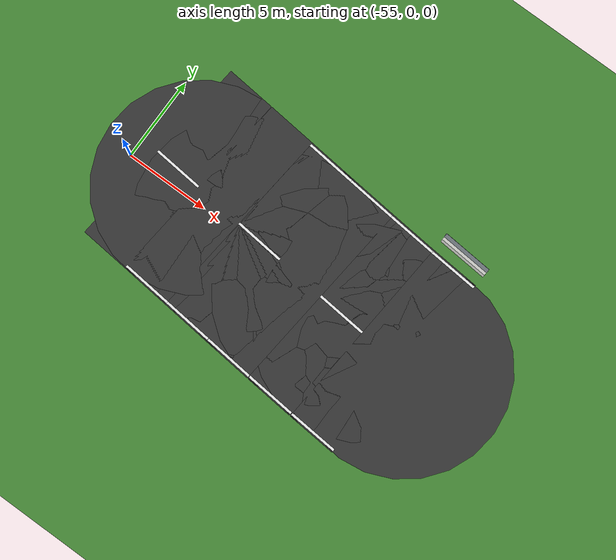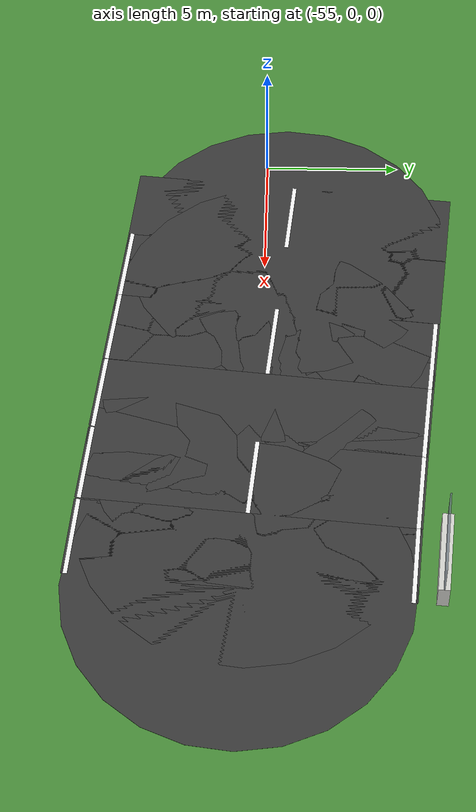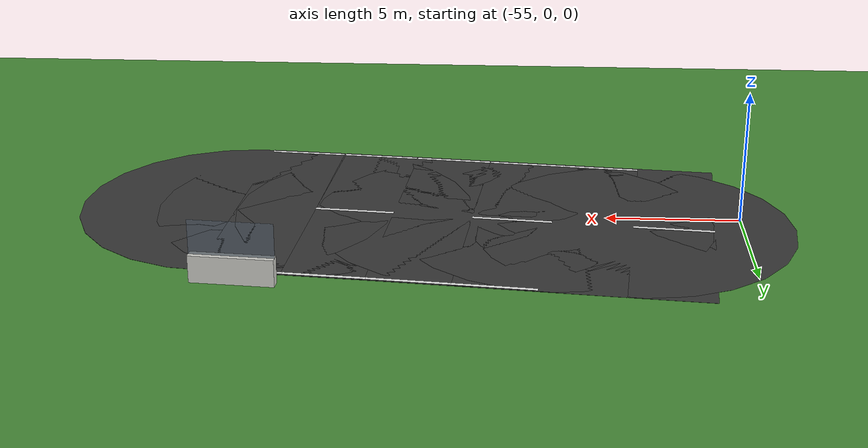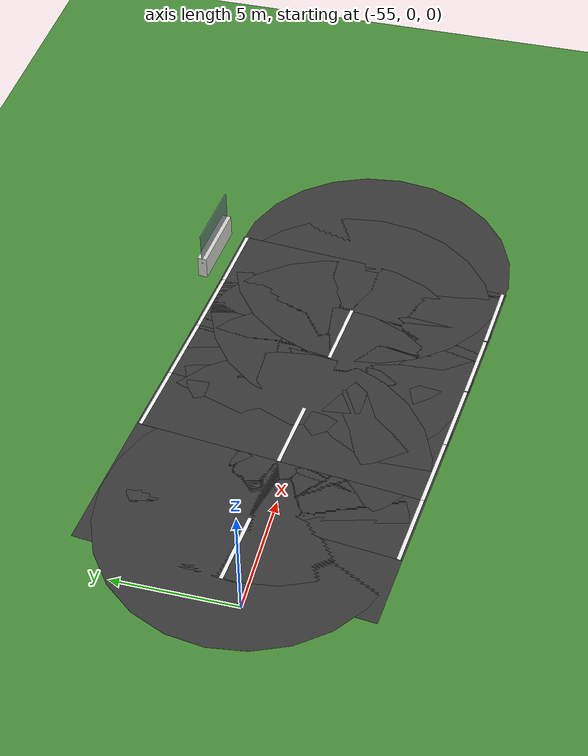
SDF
<sdf version="1.6">
 <world name="sem_silesia_ring_2026">
  <model name="ground_plane">
   <static>true</static>
   <link name="link">
    <collision name="collision">
     <geometry><plane><normal>0 0 1</normal><size>1200 1200</size></plane></geometry>
     <surface><friction><ode><mu>0.6</mu><mu2>0.6</mu2></ode></friction></surface>
    </collision>
    <visual name="visual">
     <geometry><plane><normal>0 0 1</normal><size>1200 1200</size></plane></geometry>
     <material><ambient>0.28 0.55 0.22 1</ambient><diffuse>0.28 0.55 0.22 1</diffuse></material>
    </visual>
   </link>
  </model>
  <model name="road_s422">
   <static>true</static>
   <pose>-52.4547 0.9344 0.0030 0 0 -0.0946</pose>
   <link name="link">
    <visual name="v">
     <geometry><box><size>3.0025 12.0000 0.0060</size></box></geometry>
     <material><ambient>0.22 0.22 0.22 1</ambient><diffuse>0.22 0.22 0.22 1</diffuse></material>
    </visual>
    <collision name="c">
     <geometry><box><size>3.0025 12.0000 0.0060</size></box></geometry>
     <surface><friction><ode><mu>0.9</mu><mu2>0.9</mu2></ode></friction></surface>
    </collision>
   </link>
  </model>
  <model name="cd_s422">
   <static>true</static>
   <pose>-52.4547 0.9344 0.0070 0 0 -0.0946</pose>
   <link name="link">
    <visual name="v">
     <geometry><box><size>3.0025 0.1500 0.0080</size></box></geometry>
     <material><ambient>0.95 0.95 0.95 1</ambient><diffuse>0.95 0.95 0.95 1</diffuse></material>
    </visual>
   </link>
  </model>
  <model name="road_s423">
   <static>true</static>
   <pose>-49.4663 0.6439 0.0030 0 0 -0.0992</pose>
   <link name="link">
    <visual name="v">
     <geometry><box><size>3.0025 12.0000 0.0060</size></box></geometry>
     <material><ambient>0.22 0.22 0.22 1</ambient><diffuse>0.22 0.22 0.22 1</diffuse></material>
    </visual>
    <collision name="c">
     <geometry><box><size>3.0025 12.0000 0.0060</size></box></geometry>
     <surface><friction><ode><mu>0.9</mu><mu2>0.9</mu2></ode></friction></surface>
    </collision>
   </link>
  </model>
  <model name="road_jnt423">
   <static>true</static>
   <pose>-50.9602 0.7926 0.0030 0 0 0</pose>
   <link name="link">
    <visual name="v">
     <geometry><cylinder><radius>6.0000</radius><length>0.0060</length></cylinder></geometry>
     <material><ambient>0.22 0.22 0.22 1</ambient><diffuse>0.22 0.22 0.22 1</diffuse></material>
    </visual>
    <collision name="c">
     <geometry><cylinder><radius>6.0000</radius><length>0.0060</length></cylinder></geometry>
     <surface><friction><ode><mu>0.9</mu><mu2>0.9</mu2></ode></friction></surface>
    </collision>
   </link>
  </model>
  <model name="wl_R_s423">
   <static>true</static>
   <pose>-50.0458 -5.1773 0.0070 0 0 -0.0992</pose>
   <link name="link">
    <visual name="v">
     <geometry><box><size>3.0025 0.1500 0.0080</size></box></geometry>
     <material><ambient>0.95 0.95 0.95 1</ambient><diffuse>0.95 0.95 0.95 1</diffuse></material>
    </visual>
   </link>
  </model>
  <model name="road_s424">
   <static>true</static>
   <pose>-46.4787 0.3452 0.0030 0 0 -0.1001</pose>
   <link name="link">
    <visual name="v">
     <geometry><box><size>3.0025 12.0000 0.0060</size></box></geometry>
     <material><ambient>0.22 0.22 0.22 1</ambient><diffuse>0.22 0.22 0.22 1</diffuse></material>
    </visual>
    <collision name="c">
     <geometry><box><size>3.0025 12.0000 0.0060</size></box></geometry>
     <surface><friction><ode><mu>0.9</mu><mu2>0.9</mu2></ode></friction></surface>
    </collision>
   </link>
  </model>
  <model name="road_jnt424">
   <static>true</static>
   <pose>-47.9724 0.4952 0.0030 0 0 0</pose>
   <link name="link">
    <visual name="v">
     <geometry><cylinder><radius>6.0000</radius><length>0.0060</length></cylinder></geometry>
     <material><ambient>0.22 0.22 0.22 1</ambient><diffuse>0.22 0.22 0.22 1</diffuse></material>
    </visual>
    <collision name="c">
     <geometry><cylinder><radius>6.0000</radius><length>0.0060</length></cylinder></geometry>
     <surface><friction><ode><mu>0.9</mu><mu2>0.9</mu2></ode></friction></surface>
    </collision>
   </link>
  </model>
  <model name="wl_L_s424">
   <static>true</static>
   <pose>-45.8942 6.1659 0.0070 0 0 -0.1001</pose>
   <link name="link">
    <visual name="v">
     <geometry><box><size>3.0025 0.1500 0.0080</size></box></geometry>
     <material><ambient>0.95 0.95 0.95 1</ambient><diffuse>0.95 0.95 0.95 1</diffuse></material>
    </visual>
   </link>
  </model>
  <model name="wl_R_s424">
   <static>true</static>
   <pose>-47.0631 -5.4756 0.0070 0 0 -0.1001</pose>
   <link name="link">
    <visual name="v">
     <geometry><box><size>3.0025 0.1500 0.0080</size></box></geometry>
     <material><ambient>0.95 0.95 0.95 1</ambient><diffuse>0.95 0.95 0.95 1</diffuse></material>
    </visual>
   </link>
  </model>
  <model name="cd_s424">
   <static>true</static>
   <pose>-46.4787 0.3452 0.0070 0 0 -0.1001</pose>
   <link name="link">
    <visual name="v">
     <geometry><box><size>3.0025 0.1500 0.0080</size></box></geometry>
     <material><ambient>0.95 0.95 0.95 1</ambient><diffuse>0.95 0.95 0.95 1</diffuse></material>
    </visual>
   </link>
  </model>
  <model name="road_s425">
   <static>true</static>
   <pose>-43.4907 0.0496 0.0030 0 0 -0.0972</pose>
   <link name="link">
    <visual name="v">
     <geometry><box><size>3.0025 12.0000 0.0060</size></box></geometry>
     <material><ambient>0.22 0.22 0.22 1</ambient><diffuse>0.22 0.22 0.22 1</diffuse></material>
    </visual>
    <collision name="c">
     <geometry><box><size>3.0025 12.0000 0.0060</size></box></geometry>
     <surface><friction><ode><mu>0.9</mu><mu2>0.9</mu2></ode></friction></surface>
    </collision>
   </link>
  </model>
  <model name="road_jnt425">
   <static>true</static>
   <pose>-44.9849 0.1952 0.0030 0 0 0</pose>
   <link name="link">
    <visual name="v">
     <geometry><cylinder><radius>6.0000</radius><length>0.0060</length></cylinder></geometry>
     <material><ambient>0.22 0.22 0.22 1</ambient><diffuse>0.22 0.22 0.22 1</diffuse></material>
    </visual>
    <collision name="c">
     <geometry><cylinder><radius>6.0000</radius><length>0.0060</length></cylinder></geometry>
     <surface><friction><ode><mu>0.9</mu><mu2>0.9</mu2></ode></friction></surface>
    </collision>
   </link>
  </model>
  <model name="wl_L_s425">
   <static>true</static>
   <pose>-42.9232 5.8720 0.0070 0 0 -0.0972</pose>
   <link name="link">
    <visual name="v">
     <geometry><box><size>3.0025 0.1500 0.0080</size></box></geometry>
     <material><ambient>0.95 0.95 0.95 1</ambient><diffuse>0.95 0.95 0.95 1</diffuse></material>
    </visual>
   </link>
  </model>
  <model name="wl_R_s425">
   <static>true</static>
   <pose>-44.0582 -5.7728 0.0070 0 0 -0.0972</pose>
   <link name="link">
    <visual name="v">
     <geometry><box><size>3.0025 0.1500 0.0080</size></box></geometry>
     <material><ambient>0.95 0.95 0.95 1</ambient><diffuse>0.95 0.95 0.95 1</diffuse></material>
    </visual>
   </link>
  </model>
  <model name="road_s426">
   <static>true</static>
   <pose>-40.5014 -0.2317 0.0030 0 0 -0.0905</pose>
   <link name="link">
    <visual name="v">
     <geometry><box><size>3.0025 12.0000 0.0060</size></box></geometry>
     <material><ambient>0.22 0.22 0.22 1</ambient><diffuse>0.22 0.22 0.22 1</diffuse></material>
    </visual>
    <collision name="c">
     <geometry><box><size>3.0025 12.0000 0.0060</size></box></geometry>
     <surface><friction><ode><mu>0.9</mu><mu2>0.9</mu2></ode></friction></surface>
    </collision>
   </link>
  </model>
  <model name="road_jnt426">
   <static>true</static>
   <pose>-41.9965 -0.0961 0.0030 0 0 0</pose>
   <link name="link">
    <visual name="v">
     <geometry><cylinder><radius>6.0000</radius><length>0.0060</length></cylinder></geometry>
     <material><ambient>0.22 0.22 0.22 1</ambient><diffuse>0.22 0.22 0.22 1</diffuse></material>
    </visual>
    <collision name="c">
     <geometry><cylinder><radius>6.0000</radius><length>0.0060</length></cylinder></geometry>
     <surface><friction><ode><mu>0.9</mu><mu2>0.9</mu2></ode></friction></surface>
    </collision>
   </link>
  </model>
  <model name="wl_L_s426">
   <static>true</static>
   <pose>-39.9727 5.5943 0.0070 0 0 -0.0905</pose>
   <link name="link">
    <visual name="v">
     <geometry><box><size>3.0025 0.1500 0.0080</size></box></geometry>
     <material><ambient>0.95 0.95 0.95 1</ambient><diffuse>0.95 0.95 0.95 1</diffuse></material>
    </visual>
   </link>
  </model>
  <model name="wl_R_s426">
   <static>true</static>
   <pose>-41.0301 -6.0578 0.0070 0 0 -0.0905</pose>
   <link name="link">
    <visual name="v">
     <geometry><box><size>3.0025 0.1500 0.0080</size></box></geometry>
     <material><ambient>0.95 0.95 0.95 1</ambient><diffuse>0.95 0.95 0.95 1</diffuse></material>
    </visual>
   </link>
  </model>
  <model name="cd_s426">
   <static>true</static>
   <pose>-40.5014 -0.2317 0.0070 0 0 -0.0905</pose>
   <link name="link">
    <visual name="v">
     <geometry><box><size>3.0025 0.1500 0.0080</size></box></geometry>
     <material><ambient>0.95 0.95 0.95 1</ambient><diffuse>0.95 0.95 0.95 1</diffuse></material>
    </visual>
   </link>
  </model>
  <model name="road_s427">
   <static>true</static>
   <pose>-37.5098 -0.4875 0.0030 0 0 -0.0801</pose>
   <link name="link">
    <visual name="v">
     <geometry><box><size>3.0025 12.0000 0.0060</size></box></geometry>
     <material><ambient>0.22 0.22 0.22 1</ambient><diffuse>0.22 0.22 0.22 1</diffuse></material>
    </visual>
    <collision name="c">
     <geometry><box><size>3.0025 12.0000 0.0060</size></box></geometry>
     <surface><friction><ode><mu>0.9</mu><mu2>0.9</mu2></ode></friction></surface>
    </collision>
   </link>
  </model>
  <model name="road_jnt427">
   <static>true</static>
   <pose>-39.0063 -0.3674 0.0030 0 0 0</pose>
   <link name="link">
    <visual name="v">
     <geometry><cylinder><radius>6.0000</radius><length>0.0060</length></cylinder></geometry>
     <material><ambient>0.22 0.22 0.22 1</ambient><diffuse>0.22 0.22 0.22 1</diffuse></material>
    </visual>
    <collision name="c">
     <geometry><cylinder><radius>6.0000</radius><length>0.0060</length></cylinder></geometry>
     <surface><friction><ode><mu>0.9</mu><mu2>0.9</mu2></ode></friction></surface>
    </collision>
   </link>
  </model>
  <model name="wl_L_s427">
   <static>true</static>
   <pose>-37.0420 5.3438 0.0070 0 0 -0.0801</pose>
   <link name="link">
    <visual name="v">
     <geometry><box><size>3.0025 0.1500 0.0080</size></box></geometry>
     <material><ambient>0.95 0.95 0.95 1</ambient><diffuse>0.95 0.95 0.95 1</diffuse></material>
    </visual>
   </link>
  </model>
  <model name="wl_R_s427">
   <static>true</static>
   <pose>-37.9777 -6.3187 0.0070 0 0 -0.0801</pose>
   <link name="link">
    <visual name="v">
     <geometry><box><size>3.0025 0.1500 0.0080</size></box></geometry>
     <material><ambient>0.95 0.95 0.95 1</ambient><diffuse>0.95 0.95 0.95 1</diffuse></material>
    </visual>
   </link>
  </model>
  <model name="road_jnt428">
   <static>true</static>
   <pose>-36.0134 -0.6075 0.0030 0 0 0</pose>
   <link name="link">
    <visual name="v">
     <geometry><cylinder><radius>6.0000</radius><length>0.0060</length></cylinder></geometry>
     <material><ambient>0.22 0.22 0.22 1</ambient><diffuse>0.22 0.22 0.22 1</diffuse></material>
    </visual>
    <collision name="c">
     <geometry><cylinder><radius>6.0000</radius><length>0.0060</length></cylinder></geometry>
     <surface><friction><ode><mu>0.9</mu><mu2>0.9</mu2></ode></friction></surface>
    </collision>
   </link>
  </model>
  <model name="pit_wall_427">
   <static>true</static>
   <pose>-36.9660 6.2907 0.5000 0 0 -0.0801</pose>
   <link name="link">
    <visual name="v">
     <geometry><box><size>3.0025 0.4000 1.0000</size></box></geometry>
     <material><ambient>0.82 0.82 0.80 1</ambient><diffuse>0.82 0.82 0.80 1</diffuse></material>
    </visual>
    <visual name="fence">
     <pose>0 0 1.0 0 0 0</pose>
     <geometry><box><size>3.0025 0.0500 1.5000</size></box></geometry>
     <material><ambient>0.40 0.45 0.50 0.7</ambient><diffuse>0.40 0.45 0.50 0.7</diffuse></material>
    </visual>
    <collision name="c">
     <geometry><box><size>3.0025 0.4000 1.0000</size></box></geometry>
     <surface><friction><ode><mu>0.9</mu><mu2>0.9</mu2></ode></friction></surface>
    </collision>
   </link>
  </model>
 </world>
</sdf>
